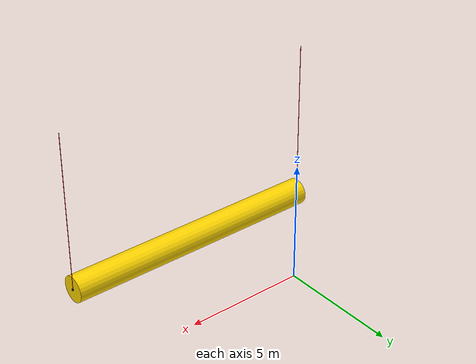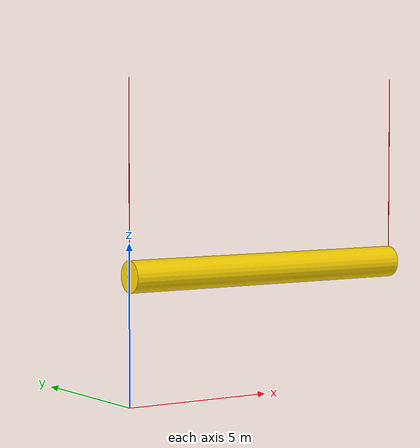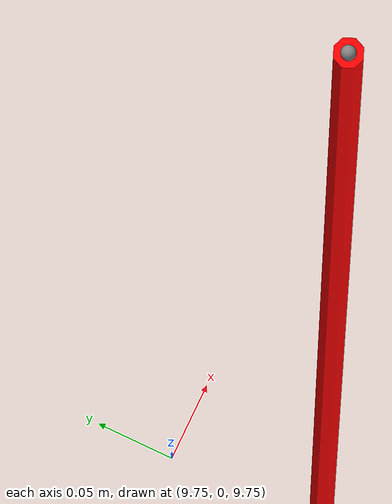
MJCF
<!--
  ~ Copyright (c) 2020.  -  present.  Kun Wang. All Rights Reserved.
  -->

<mujoco model="TT (v1.31)">
    <compiler angle="degree" coordinate="global" inertiafromgeom="true">
             <lengthrange timestep="0.001"/>
    </compiler>

    <option timestep="0.001"
            gravity="0 0 -9.81"
            solver="Newton"
            integrator="Euler"
            iterations="100">
        <flag sensornoise="disable"
            frictionloss="disable"/>
    </option>

    <visual>
        <global offwidth="1024" offheight="768"/>
    </visual>

    <default>
        <geom conaffinity="1" condim="3" contype="1" material="geom" rgba="1 .84 0 1" size="0.014"
              density="1000" friction="1.000 0.00 0.000" solref="-1000 -5"/>
        <site type="sphere" size="0.005"/>
        <tendon width="0.01" rgba="1 0 0 1" damping="10" stiffness="100"/>
        <position ctrllimited="true" ctrlrange="-500 500"/>
    </default>

    <asset>
        <texture builtin="gradient" height="100" rgb1="1 1 1" rgb2="0 0 0" type="skybox"
                 width="100"/>
        <texture builtin="flat" height="1278" mark="cross" markrgb="1 1 1" name="texgeom"
                 random="0.01" rgb1="0.8 0.6 0.4" rgb2="0.8 0.6 0.4" type="cube" width="127"/>
        <texture builtin="checker" height="100" name="texplane" rgb1="0 0 0" rgb2="0.8 0.8 0.8"
                 type="2d" width="100"/>
        <material name="MatPlane" reflectance="0.5" shininess="1" specular="1" texrepeat="30 30"
                  texture="texplane"/>
        <material name="geom" texture="texgeom" texuniform="true"/>
    </asset>

    <worldbody>

        <light cutoff="100" diffuse="1 1 1" dir="-0 0 -1.3" directional="true" exponent="1"
               pos="0 0 1.3" specular=".1 .1 .1"/>

        <!-- ======= RODS ======= -->
        <body name="nail0" pos="0 0 10">
            <site name="nail0" pos="0 0 10"/>
        </body>
        <body name="nail1" pos="10 0 10">
            <site name="nail1" pos="10 0 10"/>
        </body>

        <body name="r01">
            <geom name="r01"
                  fromto="0 0 4.0 10.0 0 4.0"
                  size="0.5"
                  type="cylinder"
                  mass="5"/>
            <freejoint name="move0_1"/>

            <site name="s0" pos="0 0 4.0" rgba="0 0 0 1" size=".05"/>
            <site name="s1" pos="10.0 0 4.0" rgba="0 0 0 1" size=".05"/>
        </body>
    </worldbody>
    <sensor>
        <framepos name="pos_s0" objname="s0" objtype="site"/>
        <framelinvel name="linvel_s0" objname="s0" objtype="site"/>
        <framelinacc name="linacc_s0" objname="s0" objtype="site"/>
        <framepos name="pos_s1" objname="s1" objtype="site"/>
        <framelinvel name="linvel_s1" objname="s1" objtype="site"/>
        <framelinacc name="linacc_s1" objname="s1" objtype="site"/>

        <framepos name="pos_nail0" objname="nail0" objtype="site"/>
        <framelinvel name="linvel_nail0" objname="nail0" objtype="site"/>
        <framelinacc name="linacc_nail0" objname="nail0" objtype="site"/>
        <framepos name="pos_nail1" objname="nail1" objtype="site"/>
        <framelinvel name="linvel_nail1" objname="nail1" objtype="site"/>
        <framelinacc name="linacc_nail1" objname="nail1" objtype="site"/>

        <framelinacc name="linacc_r01" objname="r01" objtype="body"/>
        <frameangacc name="angacc_r01" objname="r01" objtype="body"/>
        <framepos name="pos_r01" objname="r01" objtype="body"/>
        <framelinvel name="linvel_r01" objname="r01" objtype="body"/>
        <frameangvel name="angvel_r01" objname="r01" objtype="body"/>
        <framequat name="quat_r01" objname="r01" objtype="body"/>
    </sensor>

    <tendon>
        <spatial name="t0" springlength="2.5" damping="60" stiffness="200">
            <site site="nail0"/>
            <site site="s0"/>
        </spatial>
        <spatial name="t1" springlength="2.5" damping="45" stiffness="150">
            <site site="nail1"/>
            <site site="s1"/>
        </spatial>
    </tendon>
</mujoco>
